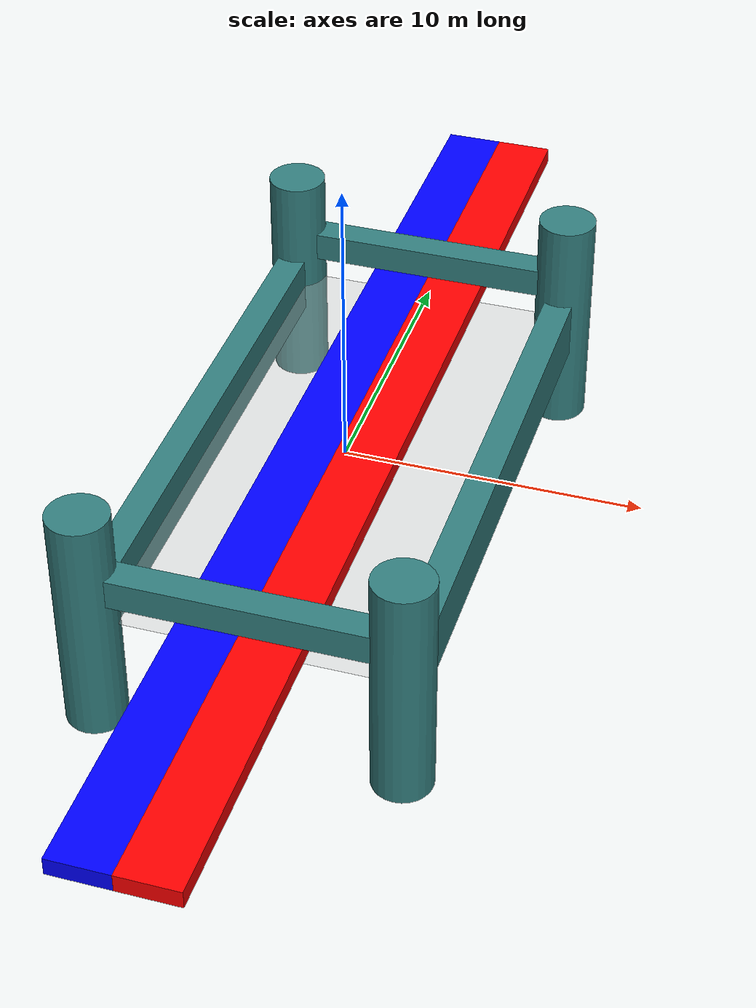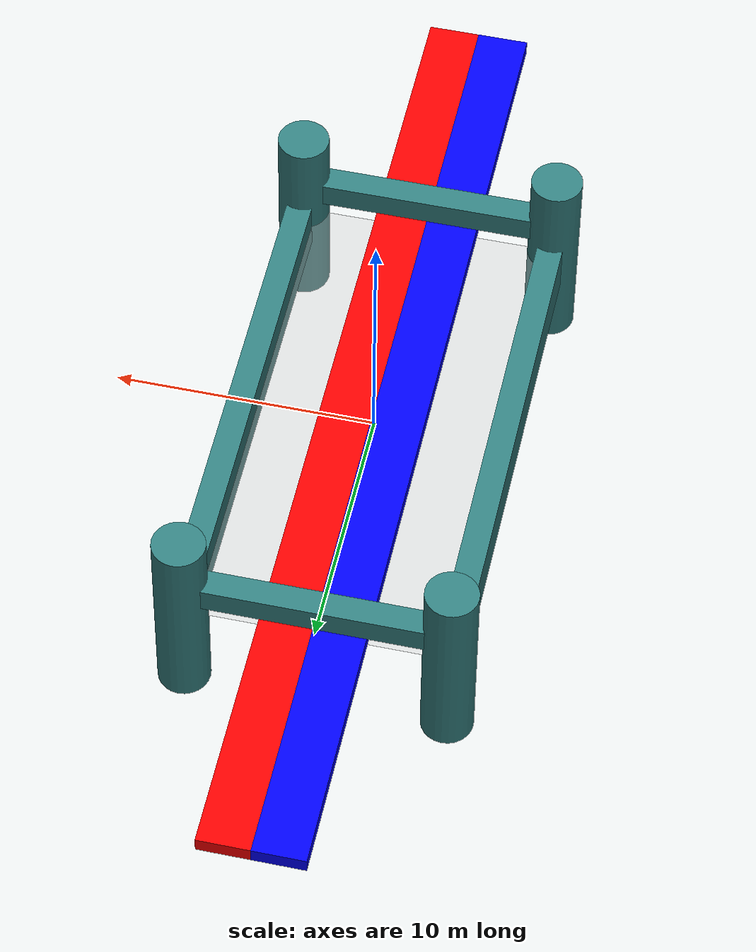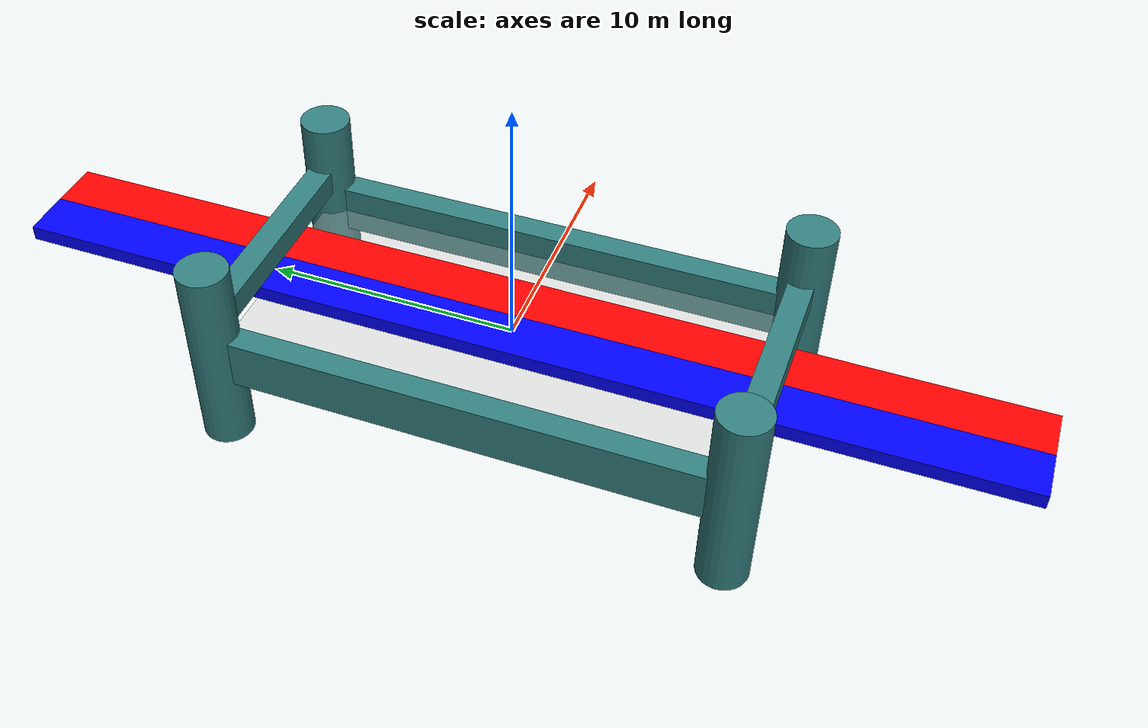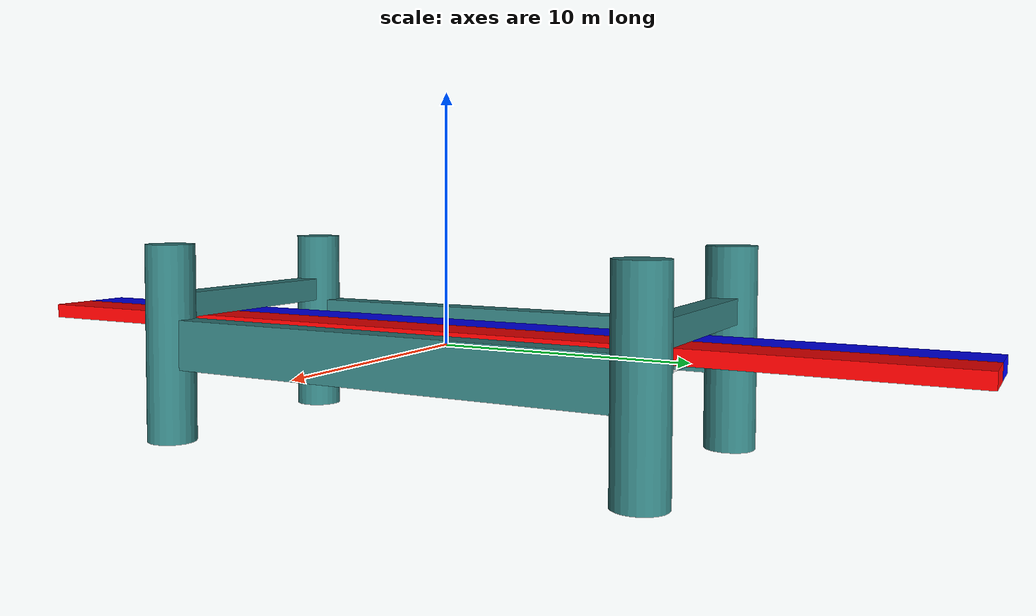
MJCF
<mujoco>
    <compiler autolimits="true"/>
    <option gravity = "0 0 -9.81" />
    <asset>
        <texture name="grid" type="2d" builtin="checker" rgb1="1 1 1" rgb2=".5 .5 .5" width="300" height="300" mark="edge" markrgb=".2 .3 .4"/>
        <material name="grid" texture="grid" texrepeat="4 4" texuniform="true"/>
    </asset>

    <worldbody>
        <light pos="0 0 20" dir="0 0 -1"/>
        <geom name="floor" pos="0 0 -0.01" type="plane" size="5 10 .01" material="grid"/>

        <geom pos="5 10 0" type="cylinder" size="1 4" rgba=".2 .5 .5 1"/>
        <geom pos="-5 10 0" type="cylinder" size="1 4" rgba=".2 .5 .5 1"/>
        <geom pos="5 -10 0" type="cylinder" size="1 4" rgba=".2 .5 .5 1"/>
        <geom pos="-5 -10 0" type="cylinder" size="1 4" rgba=".2 .5 .5 1"/>

        <geom type="box" pos="5 0 0" size="0.5 10 1" rgba=".2 .5 .5 1"/>
        <geom type="box" pos="-5 0 0" size="0.5 10 1" rgba=".2 .5 .5 1"/>
        <geom type="box" pos="0 10 1.5" size="5 0.5 0.5" rgba=".2 .5 .5 1"/>
        <geom type="box" pos="0 -10 1.5" size="5 0.5 0.5" rgba=".2 .5 .5 1"/>

        <body pos="1 0 0.5">
            <geom name="redbelt" type="box" size="1 20 0.3" rgba="1 0 0 1"  material="grid" mass="1"/>
            <joint name="redconveyor" type="slide" pos="0 -10 0" axis="0 1 0"/>
            <site name="redbeltsite" type="sphere" size="0.05" pos="0 0 0"/>
        </body>
        <body pos="-1 0 0.5">
            <geom name="bluebelt" type="box" size="1 20 0.3" rgba="0 0 1 1" material="grid" mass="1"/>
            <joint name="blueconveyor" type="slide" pos="0 -10 0" axis="0 1 0" />
            <site name="bluebeltsite" type="sphere" size="0.05" pos="0 0 0"/>
        </body>
    </worldbody>

    <actuator>
        <general name="redbeltact" joint="redconveyor" biastype="affine" gainprm="1" biasprm="0"/>
        <general name="bluebeltact" joint="blueconveyor" biastype="affine" gainprm="1" biasprm="0"/>
    </actuator>

    <sensor>
        <velocimeter site="redbeltsite"/>
        <velocimeter site="bluebeltsite"/>
        <!--velocimeter site="sitebox"/-->
    </sensor>

</mujoco>
